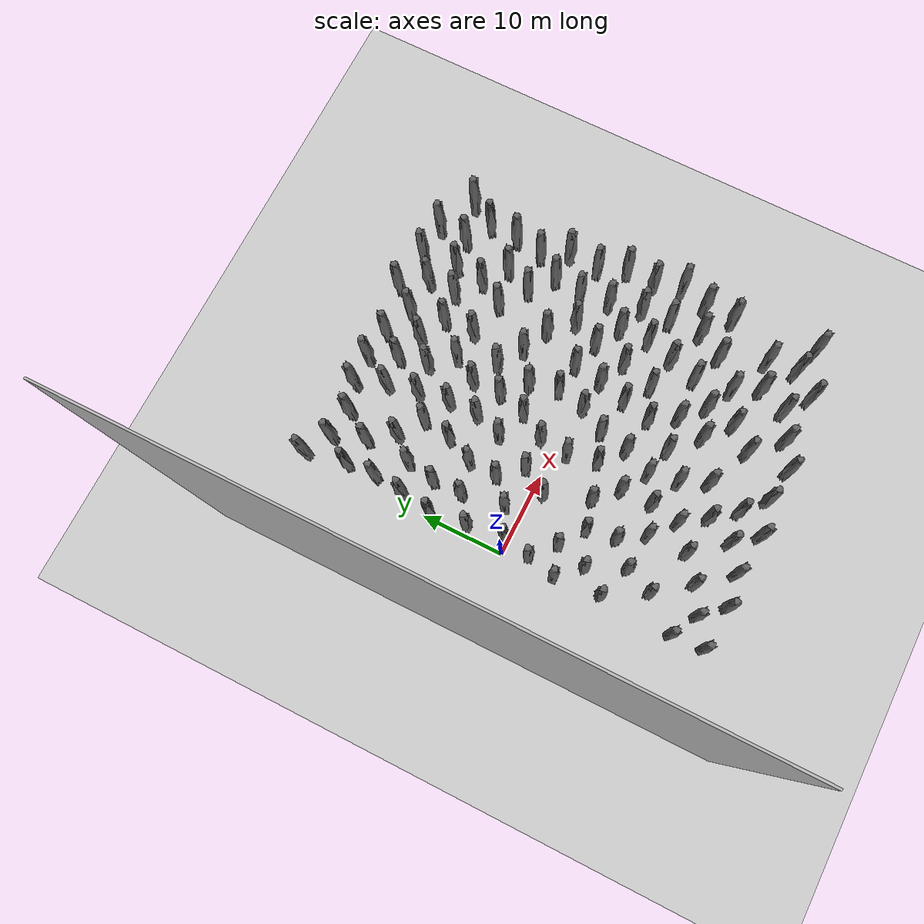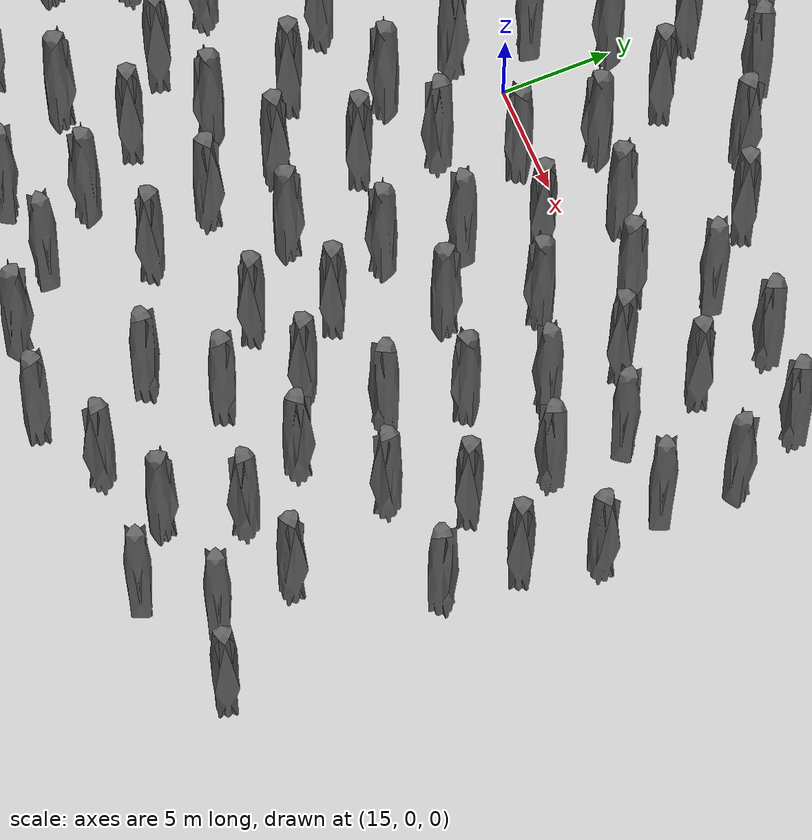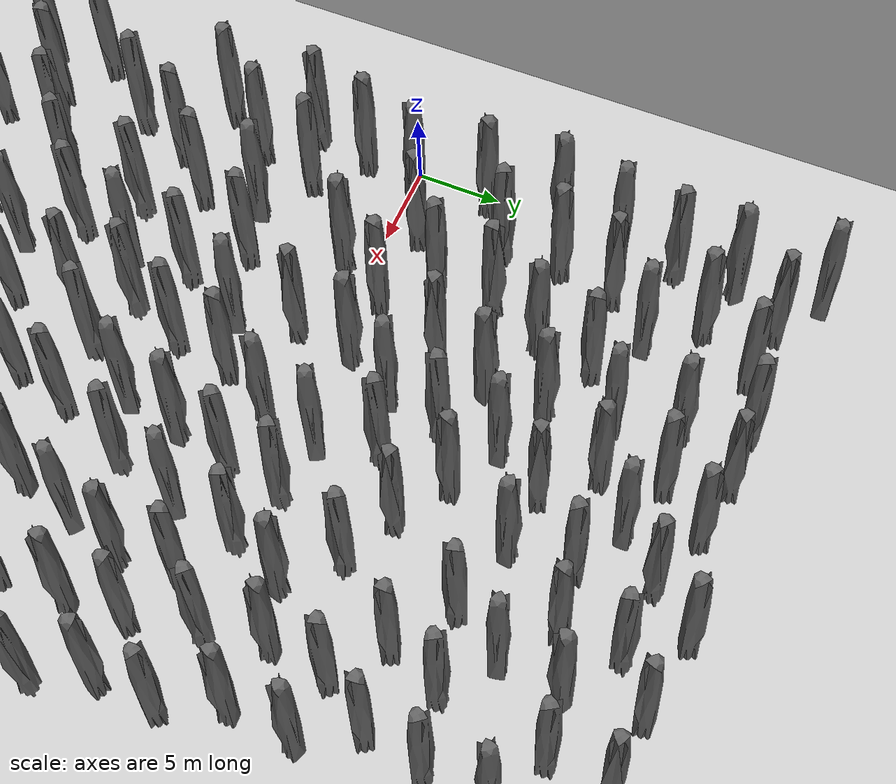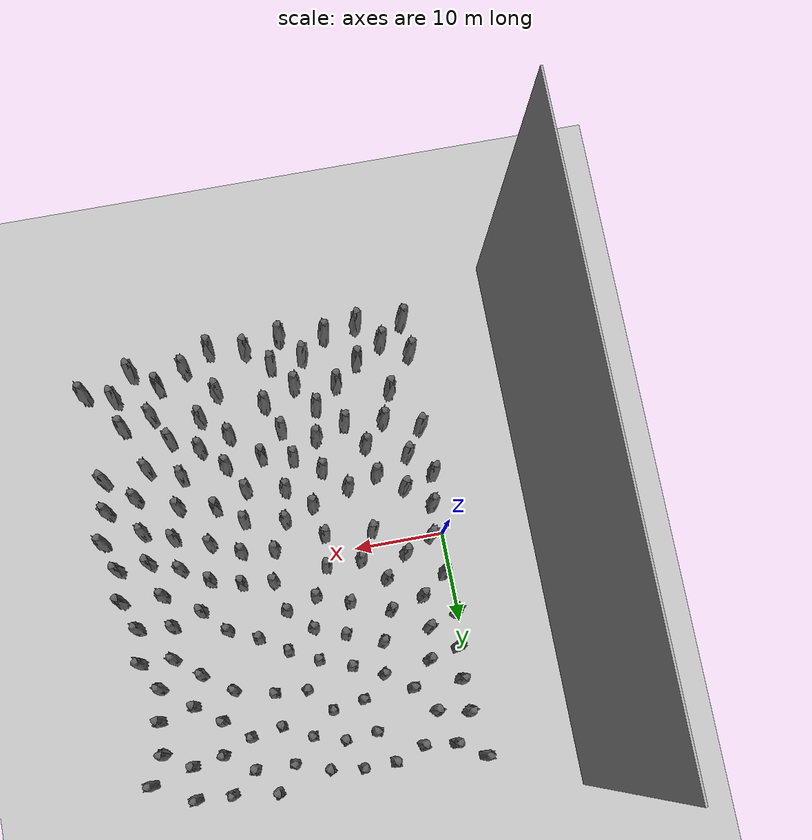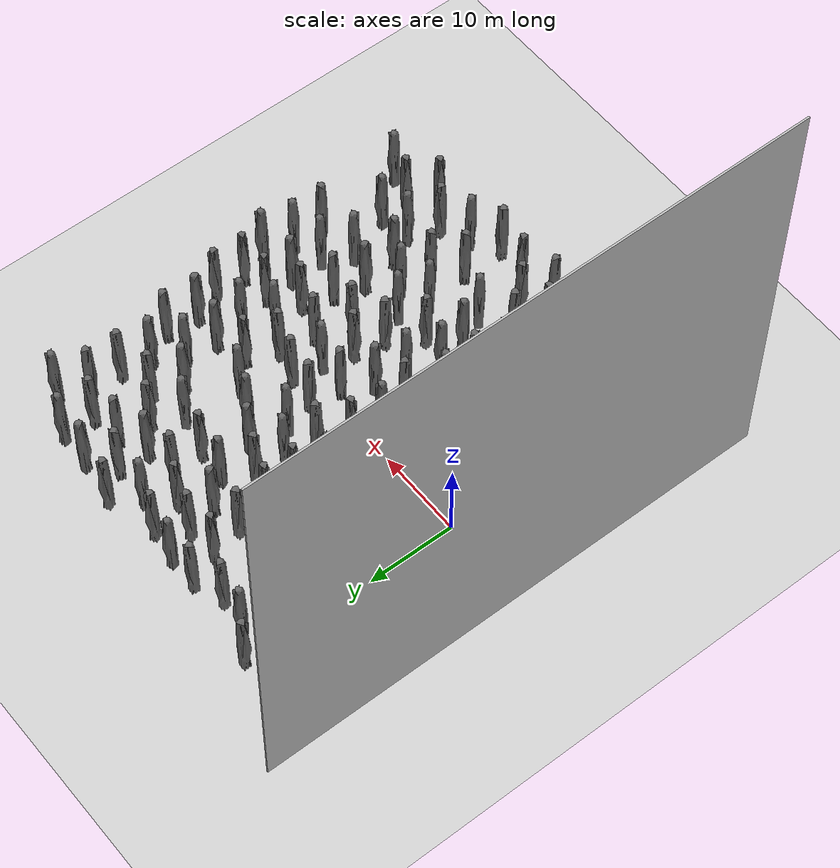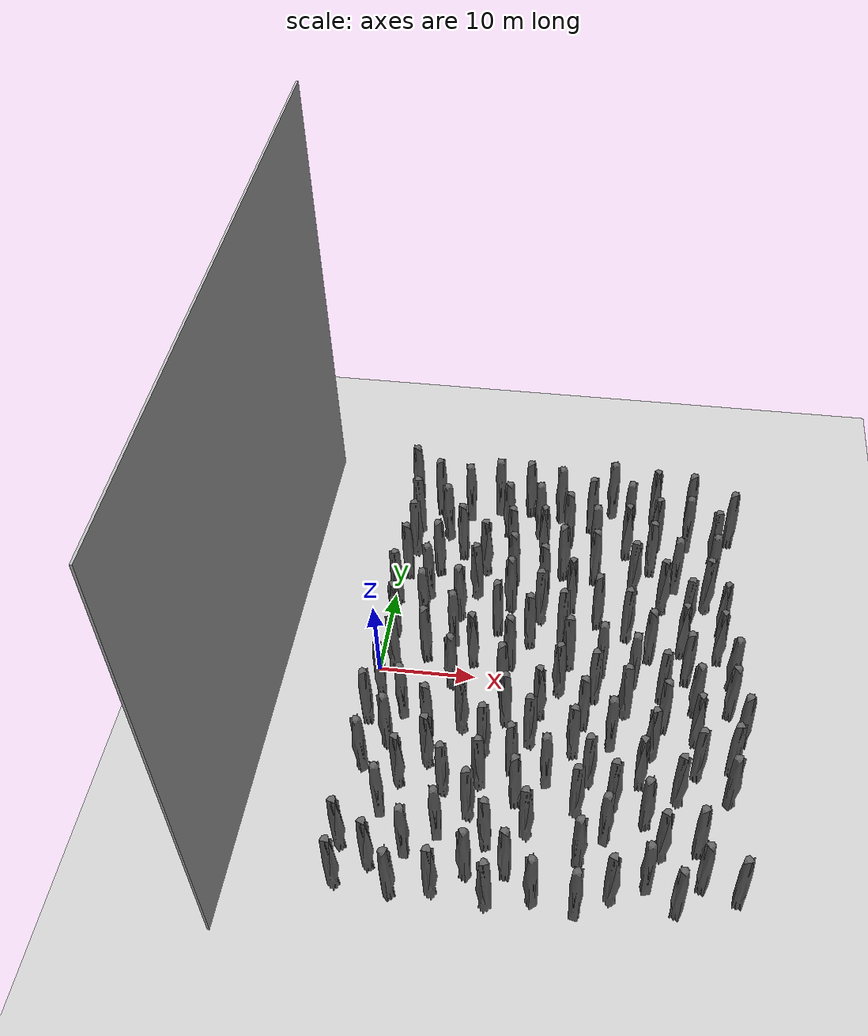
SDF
<sdf version="1.4">
 <world name="default">
  <model name="ground_plane">
   <static>1</static>
   <link name="link">
    <collision name="collision">
     <geometry><plane><normal>0 0 1</normal><size>1000 1000</size></plane></geometry>
     <surface>
      <contact><collide_bitmask>65535</collide_bitmask></contact>
      <friction><ode><mu>100</mu><mu2>50</mu2></ode></friction>
     </surface>
    </collision>
    <visual name="visual">
     <cast_shadows>0</cast_shadows>
     <geometry><plane><normal>0 0 1</normal><size>1000 1000</size></plane></geometry>
    </visual>
   </link>
  </model>
  <model name="wall_back">
   <static>1</static>
   <link name="link">
    <pose>0 0 25.0 0 0 0</pose>
    <collision name="collision"><geometry><box><size>60.0 0.2 50.0</size></box></geometry></collision>
    <visual name="visual">
     <cast_shadows>0</cast_shadows>
     <geometry><box><size>60.0 0.2 50.0</size></box></geometry>
    </visual>
   </link>
   <pose>-10.0 0.0 0 0 0 1.57</pose>
  </model>
  <include><uri>model://sun</uri></include>
  <include>
   <name>columnSimple Stone0</name>
   <uri>model://Simple Stone</uri>
   <pose>0.24278859794139862 -24.405437111854553 0 0 0 4.07991754934</pose>
   <static>true</static>
  </include>
  <include>
   <name>columnSimple Stone1</name>
   <uri>model://Simple Stone</uri>
   <pose>0.03672195225954056 -20.541362762451172 0 0 0 3.88410865453</pose>
   <static>true</static>
  </include>
  <include>
   <name>columnSimple Stone2</name>
   <uri>model://Simple Stone</uri>
   <pose>0.4337937533855438 -11.886110305786133 0 0 0 0.740858661056</pose>
   <static>true</static>
  </include>
  <include>
   <name>columnSimple Stone3</name>
   <uri>model://Simple Stone</uri>
   <pose>2.4408438205718994 -9.014479637145996 0 0 0 0.795715531437</pose>
   <static>true</static>
  </include>
  <include>
   <name>columnSimple Stone4</name>
   <uri>model://Simple Stone</uri>
   <pose>0.06098124012351036 -6.443338394165039 0 0 0 4.73537206143</pose>
   <static>true</static>
  </include>
  <include>
   <name>columnSimple Stone5</name>
   <uri>model://Simple Stone</uri>
   <pose>0.7964494824409485 -3.017904281616211 0 0 0 3.30900888622</pose>
   <static>true</static>
  </include>
  <include>
   <name>columnSimple Stone6</name>
   <uri>model://Simple Stone</uri>
   <pose>1.551018238067627 0.40337181091308594 0 0 0 2.37207772496</pose>
   <static>true</static>
  </include>
  <include>
   <name>columnSimple Stone7</name>
   <uri>model://Simple Stone</uri>
   <pose>0.9412400126457214 4.744792938232422 0 0 0 3.11075685335</pose>
   <static>true</static>
  </include>
  <include>
   <name>columnSimple Stone8</name>
   <uri>model://Simple Stone</uri>
   <pose>0.4037434458732605 9.10995101928711 0 0 0 2.37308950788</pose>
   <static>true</static>
  </include>
  <include>
   <name>columnSimple Stone9</name>
   <uri>model://Simple Stone</uri>
   <pose>0.9682223796844482 12.969032287597656 0 0 0 1.76311092473</pose>
   <static>true</static>
  </include>
  <include>
   <name>columnSimple Stone10</name>
   <uri>model://Simple Stone</uri>
   <pose>1.3236767053604126 16.454456329345703 0 0 0 4.32745460732</pose>
   <static>true</static>
  </include>
  <include>
   <name>columnSimple Stone11</name>
   <uri>model://Simple Stone</uri>
   <pose>1.1368255615234375 19.977630615234375 0 0 0 2.346002818</pose>
   <static>true</static>
  </include>
  <include>
   <name>columnSimple Stone12</name>
   <uri>model://Simple Stone</uri>
   <pose>0.24505911767482758 24.91309356689453 0 0 0 1.57504970201</pose>
   <static>true</static>
  </include>
  <include>
   <name>columnSimple Stone13</name>
   <uri>model://Simple Stone</uri>
   <pose>3.05642032623291 -22.31785750389099 0 0 0 3.82667626075</pose>
   <static>true</static>
  </include>
  <include>
   <name>columnSimple Stone14</name>
   <uri>model://Simple Stone</uri>
   <pose>3.0528717041015625 -16.597922325134277 0 0 0 0.166425751558</pose>
   <static>true</static>
  </include>
  <include>
   <name>columnSimple Stone15</name>
   <uri>model://Simple Stone</uri>
   <pose>4.401019096374512 -13.364192008972168 0 0 0 3.75659836165</pose>
   <static>true</static>
  </include>
  <include>
   <name>columnSimple Stone16</name>
   <uri>model://Simple Stone</uri>
   <pose>3.415304660797119 -5.345159530639648 0 0 0 0.484650487447</pose>
   <static>true</static>
  </include>
  <include>
   <name>columnSimple Stone17</name>
   <uri>model://Simple Stone</uri>
   <pose>4.719322204589844 1.8988189697265625 0 0 0 5.10910072272</pose>
   <static>true</static>
  </include>
  <include>
   <name>columnSimple Stone18</name>
   <uri>model://Simple Stone</uri>
   <pose>3.7330737113952637 6.86143684387207 0 0 0 6.26694854315</pose>
   <static>true</static>
  </include>
  <include>
   <name>columnSimple Stone19</name>
   <uri>model://Simple Stone</uri>
   <pose>3.6749415397644043 10.364452362060547 0 0 0 0.606167861898</pose>
   <static>true</static>
  </include>
  <include>
   <name>columnSimple Stone20</name>
   <uri>model://Simple Stone</uri>
   <pose>4.372273921966553 13.797855377197266 0 0 0 5.14896143279</pose>
   <static>true</static>
  </include>
  <include>
   <name>columnSimple Stone21</name>
   <uri>model://Simple Stone</uri>
   <pose>4.574465751647949 19.30150604248047 0 0 0 0.659293205171</pose>
   <static>true</static>
  </include>
  <include>
   <name>columnSimple Stone22</name>
   <uri>model://Simple Stone</uri>
   <pose>3.2179157733917236 23.059280395507812 0 0 0 4.80396897591</pose>
   <static>true</static>
  </include>
  <include>
   <name>columnSimple Stone23</name>
   <uri>model://Simple Stone</uri>
   <pose>5.4514288902282715 -24.87489603459835 0 0 0 5.47756990718</pose>
   <static>true</static>
  </include>
  <include>
   <name>columnSimple Stone24</name>
   <uri>model://Simple Stone</uri>
   <pose>6.093904495239258 -20.57194709777832 0 0 0 6.23683923069</pose>
   <static>true</static>
  </include>
  <include>
   <name>columnSimple Stone25</name>
   <uri>model://Simple Stone</uri>
   <pose>6.844486713409424 -10.853419303894043 0 0 0 3.80799783834</pose>
   <static>true</static>
  </include>
  <include>
   <name>columnSimple Stone26</name>
   <uri>model://Simple Stone</uri>
   <pose>6.252750873565674 -7.4002532958984375 0 0 0 1.84856027754</pose>
   <static>true</static>
  </include>
  <include>
   <name>columnSimple Stone27</name>
   <uri>model://Simple Stone</uri>
   <pose>7.284609794616699 4.284990310668945 0 0 0 0.265313715436</pose>
   <static>true</static>
  </include>
  <include>
   <name>columnSimple Stone28</name>
   <uri>model://Simple Stone</uri>
   <pose>6.637953281402588 16.470157623291016 0 0 0 1.59196445432</pose>
   <static>true</static>
  </include>
  <include>
   <name>columnSimple Stone29</name>
   <uri>model://Simple Stone</uri>
   <pose>6.698328495025635 22.657733917236328 0 0 0 0.222383276729</pose>
   <static>true</static>
  </include>
  <include>
   <name>columnSimple Stone30</name>
   <uri>model://Simple Stone</uri>
   <pose>9.190168380737305 -24.29854106903076 0 0 0 4.12731021056</pose>
   <static>true</static>
  </include>
  <include>
   <name>columnSimple Stone31</name>
   <uri>model://Simple Stone</uri>
   <pose>8.836321830749512 -18.391658306121826 0 0 0 0.191126500488</pose>
   <static>true</static>
  </include>
  <include>
   <name>columnSimple Stone32</name>
   <uri>model://Simple Stone</uri>
   <pose>8.763669967651367 -13.784502029418945 0 0 0 4.4624317583</pose>
   <static>true</static>
  </include>
  <include>
   <name>columnSimple Stone33</name>
   <uri>model://Simple Stone</uri>
   <pose>9.642091751098633 -6.513189315795898 0 0 0 3.98012834805</pose>
   <static>true</static>
  </include>
  <include>
   <name>columnSimple Stone34</name>
   <uri>model://Simple Stone</uri>
   <pose>7.809366703033447 -1.2559432983398438 0 0 0 1.13976921809</pose>
   <static>true</static>
  </include>
  <include>
   <name>columnSimple Stone35</name>
   <uri>model://Simple Stone</uri>
   <pose>9.665929794311523 1.7151985168457031 0 0 0 3.44773265887</pose>
   <static>true</static>
  </include>
  <include>
   <name>columnSimple Stone36</name>
   <uri>model://Simple Stone</uri>
   <pose>7.462857723236084 7.783954620361328 0 0 0 5.66977858959</pose>
   <static>true</static>
  </include>
  <include>
   <name>columnSimple Stone37</name>
   <uri>model://Simple Stone</uri>
   <pose>8.871432304382324 10.9918212890625 0 0 0 2.58118329732</pose>
   <static>true</static>
  </include>
  <include>
   <name>columnSimple Stone38</name>
   <uri>model://Simple Stone</uri>
   <pose>9.493099212646484 14.439727783203125 0 0 0 3.76143379283</pose>
   <static>true</static>
  </include>
  <include>
   <name>columnSimple Stone39</name>
   <uri>model://Simple Stone</uri>
   <pose>12.024210929870605 -22.23875594139099 0 0 0 1.01964092442</pose>
   <static>true</static>
  </include>
  <include>
   <name>columnSimple Stone40</name>
   <uri>model://Simple Stone</uri>
   <pose>11.535367012023926 -16.157901763916016 0 0 0 4.35040652159</pose>
   <static>true</static>
  </include>
  <include>
   <name>columnSimple Stone41</name>
   <uri>model://Simple Stone</uri>
   <pose>12.117260932922363 -12.703063011169434 0 0 0 2.25315214806</pose>
   <static>true</static>
  </include>
  <include>
   <name>columnSimple Stone42</name>
   <uri>model://Simple Stone</uri>
   <pose>12.128966331481934 -8.980974197387695 0 0 0 4.27369745124</pose>
   <static>true</static>
  </include>
  <include>
   <name>columnSimple Stone43</name>
   <uri>model://Simple Stone</uri>
   <pose>11.73979663848877 6.153566360473633 0 0 0 4.86796213447</pose>
   <static>true</static>
  </include>
  <include>
   <name>columnSimple Stone44</name>
   <uri>model://Simple Stone</uri>
   <pose>12.144309997558594 16.730052947998047 0 0 0 1.72035202663</pose>
   <static>true</static>
  </include>
  <include>
   <name>columnSimple Stone45</name>
   <uri>model://Simple Stone</uri>
   <pose>11.35749340057373 20.356365203857422 0 0 0 1.3100821778</pose>
   <static>true</static>
  </include>
  <include>
   <name>columnSimple Stone46</name>
   <uri>model://Simple Stone</uri>
   <pose>9.987133979797363 23.86532211303711 0 0 0 6.19588189159</pose>
   <static>true</static>
  </include>
  <include>
   <name>columnSimple Stone47</name>
   <uri>model://Simple Stone</uri>
   <pose>14.21457290649414 -24.99680172558874 0 0 0 2.38622581725</pose>
   <static>true</static>
  </include>
  <include>
   <name>columnSimple Stone48</name>
   <uri>model://Simple Stone</uri>
   <pose>13.497781753540039 -19.06021785736084 0 0 0 2.00298672741</pose>
   <static>true</static>
  </include>
  <include>
   <name>columnSimple Stone49</name>
   <uri>model://Simple Stone</uri>
   <pose>13.83027172088623 -5.218950271606445 0 0 0 2.013951878</pose>
   <static>true</static>
  </include>
  <include>
   <name>columnSimple Stone50</name>
   <uri>model://Simple Stone</uri>
   <pose>13.155532836914062 -1.7039070129394531 0 0 0 4.93215409631</pose>
   <static>true</static>
  </include>
  <include>
   <name>columnSimple Stone51</name>
   <uri>model://Simple Stone</uri>
   <pose>13.508941650390625 1.7817211151123047 0 0 0 1.33944523653</pose>
   <static>true</static>
  </include>
  <include>
   <name>columnSimple Stone52</name>
   <uri>model://Simple Stone</uri>
   <pose>12.74628734588623 9.509380340576172 0 0 0 1.13496305618</pose>
   <static>true</static>
  </include>
  <include>
   <name>columnSimple Stone53</name>
   <uri>model://Simple Stone</uri>
   <pose>12.69270133972168 13.012470245361328 0 0 0 1.26914348802</pose>
   <static>true</static>
  </include>
  <include>
   <name>columnSimple Stone54</name>
   <uri>model://Simple Stone</uri>
   <pose>14.845985412597656 20.680301666259766 0 0 0 0.326503138781</pose>
   <static>true</static>
  </include>
  <include>
   <name>columnSimple Stone55</name>
   <uri>model://Simple Stone</uri>
   <pose>13.490337371826172 23.91089630126953 0 0 0 4.95123401602</pose>
   <static>true</static>
  </include>
  <include>
   <name>columnSimple Stone56</name>
   <uri>model://Simple Stone</uri>
   <pose>15.669291496276855 -21.8095920085907 0 0 0 1.52266387152</pose>
   <static>true</static>
  </include>
  <include>
   <name>columnSimple Stone57</name>
   <uri>model://Simple Stone</uri>
   <pose>17.189678192138672 -17.505812644958496 0 0 0 4.06706538045</pose>
   <static>true</static>
  </include>
  <include>
   <name>columnSimple Stone58</name>
   <uri>model://Simple Stone</uri>
   <pose>15.833889961242676 -14.27527904510498 0 0 0 4.85717226339</pose>
   <static>true</static>
  </include>
  <include>
   <name>columnSimple Stone59</name>
   <uri>model://Simple Stone</uri>
   <pose>15.0914306640625 -10.85135269165039 0 0 0 4.6209424416</pose>
   <static>true</static>
  </include>
  <include>
   <name>columnSimple Stone60</name>
   <uri>model://Simple Stone</uri>
   <pose>16.533357620239258 -7.514278411865234 0 0 0 4.23393022104</pose>
   <static>true</static>
  </include>
  <include>
   <name>columnSimple Stone61</name>
   <uri>model://Simple Stone</uri>
   <pose>17.13768196105957 -4.06329345703125 0 0 0 3.57590578839</pose>
   <static>true</static>
  </include>
  <include>
   <name>columnSimple Stone62</name>
   <uri>model://Simple Stone</uri>
   <pose>15.253923416137695 4.819738388061523 0 0 0 1.8492375149</pose>
   <static>true</static>
  </include>
  <include>
   <name>columnSimple Stone63</name>
   <uri>model://Simple Stone</uri>
   <pose>16.125547409057617 8.213085174560547 0 0 0 4.14788243463</pose>
   <static>true</static>
  </include>
  <include>
   <name>columnSimple Stone64</name>
   <uri>model://Simple Stone</uri>
   <pose>16.126379013061523 11.716583251953125 0 0 0 1.61932438963</pose>
   <static>true</static>
  </include>
  <include>
   <name>columnSimple Stone65</name>
   <uri>model://Simple Stone</uri>
   <pose>15.607414245605469 17.260543823242188 0 0 0 3.07526383332</pose>
   <static>true</static>
  </include>
  <include>
   <name>columnSimple Stone66</name>
   <uri>model://Simple Stone</uri>
   <pose>17.00541877746582 23.439170837402344 0 0 0 0.485670233224</pose>
   <static>true</static>
  </include>
  <include>
   <name>columnSimple Stone67</name>
   <uri>model://Simple Stone</uri>
   <pose>18.3140926361084 -24.107316732406616 0 0 0 0.656268932226</pose>
   <static>true</static>
  </include>
  <include>
   <name>columnSimple Stone68</name>
   <uri>model://Simple Stone</uri>
   <pose>18.50237274169922 -11.651339530944824 0 0 0 0.183805515627</pose>
   <static>true</static>
  </include>
  <include>
   <name>columnSimple Stone69</name>
   <uri>model://Simple Stone</uri>
   <pose>18.840913772583008 -1.0016727447509766 0 0 0 2.55929753404</pose>
   <static>true</static>
  </include>
  <include>
   <name>columnSimple Stone70</name>
   <uri>model://Simple Stone</uri>
   <pose>19.549650192260742 2.429391860961914 0 0 0 2.03840149001</pose>
   <static>true</static>
  </include>
  <include>
   <name>columnSimple Stone71</name>
   <uri>model://Simple Stone</uri>
   <pose>18.689725875854492 5.825719833374023 0 0 0 4.28424989372</pose>
   <static>true</static>
  </include>
  <include>
   <name>columnSimple Stone72</name>
   <uri>model://Simple Stone</uri>
   <pose>19.250247955322266 10.130409240722656 0 0 0 3.22249373045</pose>
   <static>true</static>
  </include>
  <include>
   <name>columnSimple Stone73</name>
   <uri>model://Simple Stone</uri>
   <pose>17.98444366455078 14.686786651611328 0 0 0 5.09983388278</pose>
   <static>true</static>
  </include>
  <include>
   <name>columnSimple Stone74</name>
   <uri>model://Simple Stone</uri>
   <pose>18.190393447875977 19.63653564453125 0 0 0 1.54132888939</pose>
   <static>true</static>
  </include>
  <include>
   <name>columnSimple Stone75</name>
   <uri>model://Simple Stone</uri>
   <pose>21.6840763092041 -14.6367826461792 0 0 0 4.10533720322</pose>
   <static>true</static>
  </include>
  <include>
   <name>columnSimple Stone76</name>
   <uri>model://Simple Stone</uri>
   <pose>20.829971313476562 -8.23192024230957 0 0 0 1.93454472079</pose>
   <static>true</static>
  </include>
  <include>
   <name>columnSimple Stone77</name>
   <uri>model://Simple Stone</uri>
   <pose>21.579492568969727 -4.809532165527344 0 0 0 1.59166694532</pose>
   <static>true</static>
  </include>
  <include>
   <name>columnSimple Stone78</name>
   <uri>model://Simple Stone</uri>
   <pose>22.205320358276367 8.248374938964844 0 0 0 4.82253270084</pose>
   <static>true</static>
  </include>
  <include>
   <name>columnSimple Stone79</name>
   <uri>model://Simple Stone</uri>
   <pose>21.476282119750977 14.401165008544922 0 0 0 1.43627350498</pose>
   <static>true</static>
  </include>
  <include>
   <name>columnSimple Stone80</name>
   <uri>model://Simple Stone</uri>
   <pose>21.303607940673828 18.029544830322266 0 0 0 0.162886479792</pose>
   <static>true</static>
  </include>
  <include>
   <name>columnSimple Stone81</name>
   <uri>model://Simple Stone</uri>
   <pose>20.634450912475586 22.146732330322266 0 0 0 4.53841578196</pose>
   <static>true</static>
  </include>
  <include>
   <name>columnSimple Stone82</name>
   <uri>model://Simple Stone</uri>
   <pose>22.35286521911621 -24.800032928586006 0 0 0 6.04734479151</pose>
   <static>true</static>
  </include>
  <include>
   <name>columnSimple Stone83</name>
   <uri>model://Simple Stone</uri>
   <pose>22.30310821533203 -19.79825448989868 0 0 0 5.69551502196</pose>
   <static>true</static>
  </include>
  <include>
   <name>columnSimple Stone84</name>
   <uri>model://Simple Stone</uri>
   <pose>24.581254959106445 -17.136571407318115 0 0 0 5.8785674549</pose>
   <static>true</static>
  </include>
  <include>
   <name>columnSimple Stone85</name>
   <uri>model://Simple Stone</uri>
   <pose>22.600332260131836 -11.255217552185059 0 0 0 4.22642361219</pose>
   <static>true</static>
  </include>
  <include>
   <name>columnSimple Stone86</name>
   <uri>model://Simple Stone</uri>
   <pose>24.46186065673828 -6.8011322021484375 0 0 0 0.142082678206</pose>
   <static>true</static>
  </include>
  <include>
   <name>columnSimple Stone87</name>
   <uri>model://Simple Stone</uri>
   <pose>22.51894187927246 -1.4343376159667969 0 0 0 4.32667523989</pose>
   <static>true</static>
  </include>
  <include>
   <name>columnSimple Stone88</name>
   <uri>model://Simple Stone</uri>
   <pose>23.030494689941406 2.0316162109375 0 0 0 6.25337211364</pose>
   <static>true</static>
  </include>
  <include>
   <name>columnSimple Stone89</name>
   <uri>model://Simple Stone</uri>
   <pose>22.83614730834961 24.871994018554688 0 0 0 0.394470391568</pose>
   <static>true</static>
  </include>
  <include>
   <name>columnSimple Stone90</name>
   <uri>model://Simple Stone</uri>
   <pose>25.43499183654785 -23.134199738502502 0 0 0 3.82780460766</pose>
   <static>true</static>
  </include>
  <include>
   <name>columnSimple Stone91</name>
   <uri>model://Simple Stone</uri>
   <pose>25.13233184814453 -13.676682472229004 0 0 0 4.01549606978</pose>
   <static>true</static>
  </include>
  <include>
   <name>columnSimple Stone92</name>
   <uri>model://Simple Stone</uri>
   <pose>25.695253372192383 -2.9126968383789062 0 0 0 2.17440796615</pose>
   <static>true</static>
  </include>
  <include>
   <name>columnSimple Stone93</name>
   <uri>model://Simple Stone</uri>
   <pose>26.396087646484375 1.058319091796875 0 0 0 6.16935785115</pose>
   <static>true</static>
  </include>
  <include>
   <name>columnSimple Stone94</name>
   <uri>model://Simple Stone</uri>
   <pose>25.39634132385254 6.802032470703125 0 0 0 4.25615522374</pose>
   <static>true</static>
  </include>
  <include>
   <name>columnSimple Stone95</name>
   <uri>model://Simple Stone</uri>
   <pose>25.78321075439453 13.294597625732422 0 0 0 3.92238379813</pose>
   <static>true</static>
  </include>
  <include>
   <name>columnSimple Stone96</name>
   <uri>model://Simple Stone</uri>
   <pose>24.771305084228516 18.529132843017578 0 0 0 3.33175878767</pose>
   <static>true</static>
  </include>
  <include>
   <name>columnSimple Stone97</name>
   <uri>model://Simple Stone</uri>
   <pose>24.908716201782227 22.02993392944336 0 0 0 6.00099860494</pose>
   <static>true</static>
  </include>
  <include>
   <name>columnSimple Stone98</name>
   <uri>model://Simple Stone</uri>
   <pose>28.57706069946289 -21.58438539505005 0 0 0 0.212080412926</pose>
   <static>true</static>
  </include>
  <include>
   <name>columnSimple Stone99</name>
   <uri>model://Simple Stone</uri>
   <pose>28.2824649810791 -15.210034370422363 0 0 0 5.06526668631</pose>
   <static>true</static>
  </include>
  <include>
   <name>columnSimple Stone100</name>
   <uri>model://Simple Stone</uri>
   <pose>27.574661254882812 -10.945472717285156 0 0 0 3.18758272652</pose>
   <static>true</static>
  </include>
  <include>
   <name>columnSimple Stone101</name>
   <uri>model://Simple Stone</uri>
   <pose>28.527751922607422 -7.574104309082031 0 0 0 2.46528850845</pose>
   <static>true</static>
  </include>
  <include>
   <name>columnSimple Stone102</name>
   <uri>model://Simple Stone</uri>
   <pose>29.557418823242188 -4.22532844543457 0 0 0 1.50295386772</pose>
   <static>true</static>
  </include>
  <include>
   <name>columnSimple Stone103</name>
   <uri>model://Simple Stone</uri>
   <pose>29.411846160888672 -0.724853515625 0 0 0 4.0627563584</pose>
   <static>true</static>
  </include>
  <include>
   <name>columnSimple Stone104</name>
   <uri>model://Simple Stone</uri>
   <pose>27.846559524536133 4.247465133666992 0 0 0 1.28262334822</pose>
   <static>true</static>
  </include>
  <include>
   <name>columnSimple Stone105</name>
   <uri>model://Simple Stone</uri>
   <pose>28.97344207763672 11.02874755859375 0 0 0 3.6064457306</pose>
   <static>true</static>
  </include>
  <include>
   <name>columnSimple Stone106</name>
   <uri>model://Simple Stone</uri>
   <pose>27.509353637695312 16.34335708618164 0 0 0 1.74753736725</pose>
   <static>true</static>
  </include>
  <include>
   <name>columnSimple Stone107</name>
   <uri>model://Simple Stone</uri>
   <pose>27.997560501098633 19.895069122314453 0 0 0 2.6185490325</pose>
   <static>true</static>
  </include>
  <include>
   <name>columnSimple Stone108</name>
   <uri>model://Simple Stone</uri>
   <pose>27.690549850463867 24.15970230102539 0 0 0 3.33643675798</pose>
   <static>true</static>
  </include>
  <include>
   <name>columnSimple Stone109</name>
   <uri>model://Simple Stone</uri>
   <pose>31.37636947631836 -23.731855988502502 0 0 0 1.2194507581</pose>
   <static>true</static>
  </include>
  <include>
   <name>columnSimple Stone110</name>
   <uri>model://Simple Stone</uri>
   <pose>29.87553596496582 -18.330392360687256 0 0 0 3.72018896304</pose>
   <static>true</static>
  </include>
  <include>
   <name>columnSimple Stone111</name>
   <uri>model://Simple Stone</uri>
   <pose>31.28131675720215 -12.379999160766602 0 0 0 3.72885209607</pose>
   <static>true</static>
  </include>
  <include>
   <name>columnSimple Stone112</name>
   <uri>model://Simple Stone</uri>
   <pose>31.81048583984375 1.8287792205810547 0 0 0 4.44989717483</pose>
   <static>true</static>
  </include>
  <include>
   <name>columnSimple Stone113</name>
   <uri>model://Simple Stone</uri>
   <pose>31.20465850830078 5.354331970214844 0 0 0 3.22733572613</pose>
   <static>true</static>
  </include>
  <include>
   <name>columnSimple Stone114</name>
   <uri>model://Simple Stone</uri>
   <pose>31.74009132385254 8.81667709350586 0 0 0 3.94544456392</pose>
   <static>true</static>
  </include>
  <include>
   <name>columnSimple Stone115</name>
   <uri>model://Simple Stone</uri>
   <pose>30.326444625854492 14.260448455810547 0 0 0 0.0234672240514</pose>
   <static>true</static>
  </include>
  <include>
   <name>columnSimple Stone116</name>
   <uri>model://Simple Stone</uri>
   <pose>31.446378707885742 20.511642456054688 0 0 0 0.0208216431134</pose>
   <static>true</static>
  </include>
  <include>
   <name>columnSimple Stone117</name>
   <uri>model://Simple Stone</uri>
   <pose>31.722272872924805 24.00426483154297 0 0 0 4.83753531206</pose>
   <static>true</static>
  </include>
  <include>
   <name>columnSimple Stone118</name>
   <uri>model://Simple Stone</uri>
   <pose>33.62772750854492 -21.047474145889282 0 0 0 1.20862175844</pose>
   <static>true</static>
  </include>
  <include>
   <name>columnSimple Stone119</name>
   <uri>model://Simple Stone</uri>
   <pose>33.29328155517578 -17.55997371673584 0 0 0 4.77113810287</pose>
   <static>true</static>
  </include>
  <include>
   <name>columnSimple Stone120</name>
   <uri>model://Simple Stone</uri>
   <pose>33.06586456298828 -9.3650541305542 0 0 0 4.16093924337</pose>
   <static>true</static>
  </include>
  <include>
   <name>columnSimple Stone121</name>
   <uri>model://Simple Stone</uri>
   <pose>32.84957504272461 -5.4685516357421875 0 0 0 3.3028230223</pose>
   <static>true</static>
  </include>
  <include>
   <name>columnSimple Stone122</name>
   <uri>model://Simple Stone</uri>
   <pose>32.68706512451172 -1.9688224792480469 0 0 0 0.918827679104</pose>
   <static>true</static>
  </include>
  <include>
   <name>columnSimple Stone123</name>
   <uri>model://Simple Stone</uri>
   <pose>33.694217681884766 11.724578857421875 0 0 0 3.73466430292</pose>
   <static>true</static>
  </include>
  <include>
   <name>columnSimple Stone124</name>
   <uri>model://Simple Stone</uri>
   <pose>34.28938293457031 15.17715835571289 0 0 0 0.145051781149</pose>
   <static>true</static>
  </include>
  <include>
   <name>columnSimple Stone125</name>
   <uri>model://Simple Stone</uri>
   <pose>34.43157958984375 18.67776870727539 0 0 0 2.25650299804</pose>
   <static>true</static>
  </include>
  <include>
   <name>columnSimple Stone126</name>
   <uri>model://Simple Stone</uri>
   <pose>36.977073669433594 -22.07527232170105 0 0 0 4.4887092554</pose>
   <static>true</static>
  </include>
  <include>
   <name>columnSimple Stone127</name>
   <uri>model://Simple Stone</uri>
   <pose>36.254032135009766 -11.923535346984863 0 0 0 5.46838855835</pose>
   <static>true</static>
  </include>
  <include>
   <name>columnSimple Stone128</name>
   <uri>model://Simple Stone</uri>
   <pose>36.44089889526367 -8.42502212524414 0 0 0 4.22891174801</pose>
   <static>true</static>
  </include>
  <include>
   <name>columnSimple Stone129</name>
   <uri>model://Simple Stone</uri>
   <pose>36.18650817871094 -1.8003253936767578 0 0 0 1.16248107018</pose>
   <static>true</static>
  </include>
  <include>
   <name>columnSimple Stone130</name>
   <uri>model://Simple Stone</uri>
   <pose>36.4236946105957 1.6951370239257812 0 0 0 0.559475924359</pose>
   <static>true</static>
  </include>
  <include>
   <name>columnSimple Stone131</name>
   <uri>model://Simple Stone</uri>
   <pose>35.03955078125 4.913623809814453 0 0 0 3.21008347489</pose>
   <static>true</static>
  </include>
  <include>
   <name>columnSimple Stone132</name>
   <uri>model://Simple Stone</uri>
   <pose>35.3743782043457 8.650238037109375 0 0 0 2.80024705473</pose>
   <static>true</static>
  </include>
  <include>
   <name>columnSimple Stone133</name>
   <uri>model://Simple Stone</uri>
   <pose>36.20895767211914 21.696949005126953 0 0 0 4.74030309253</pose>
   <static>true</static>
  </include>
  <include>
   <name>columnSimple Stone136</name>
   <uri>model://Simple Stone</uri>
   <pose>37.44718933105469 -5.069147109985352 0 0 0 4.84706061785</pose>
   <static>true</static>
  </include>
 </world>
</sdf>
